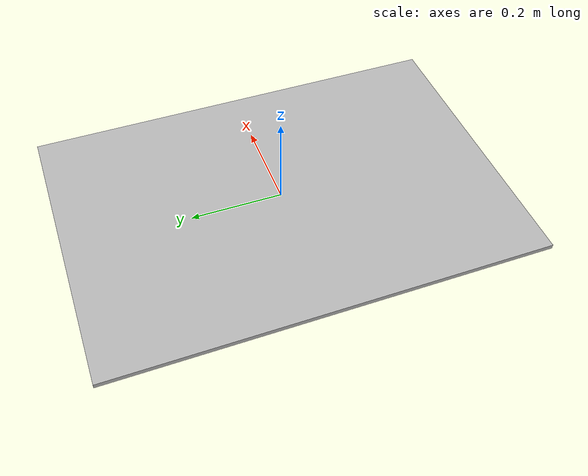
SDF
<?xml version="1.0" ?>
<sdf version="1.4">
  <model name="electrical_drawing">
    <static>true</static>
    <link name="link">
      <pose>0 0 0 0 0 0</pose>
      <visual name="visual">
        <cast_shadows>false</cast_shadows>
        <geometry>
          <box>
            <size>0.652 0.948 0.01</size>
          </box>
        </geometry>
        <material>
          <script>
            <uri>model://electrical_drawing/materials/scripts</uri>
            <uri>model://electrical_drawing/materials/textures</uri>
            <name>electrical_drawing</name>
          </script>
        </material>
      </visual>
    </link>
  </model>
</sdf>
